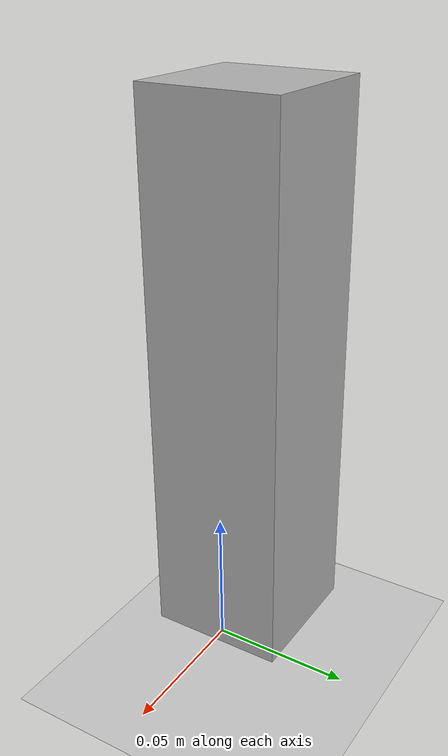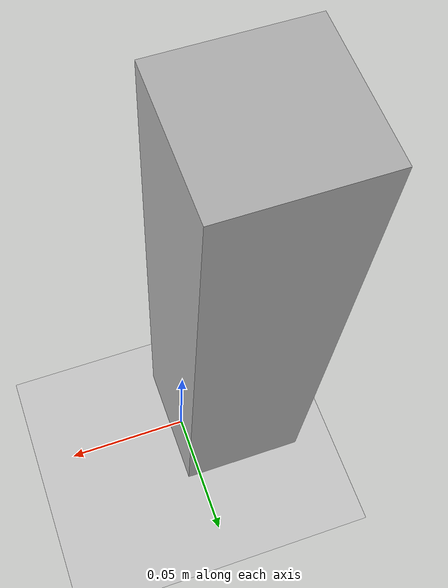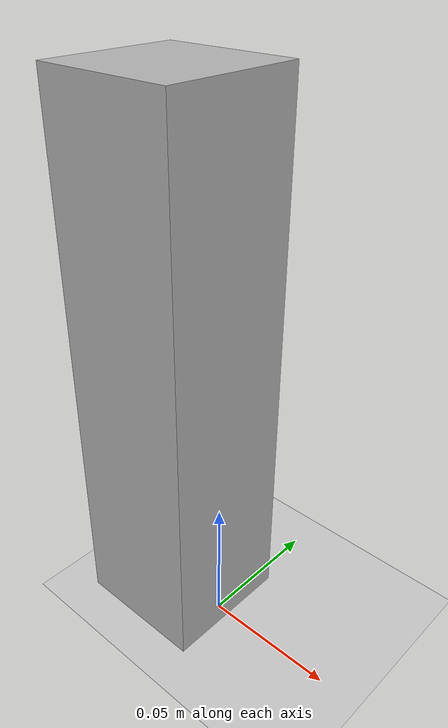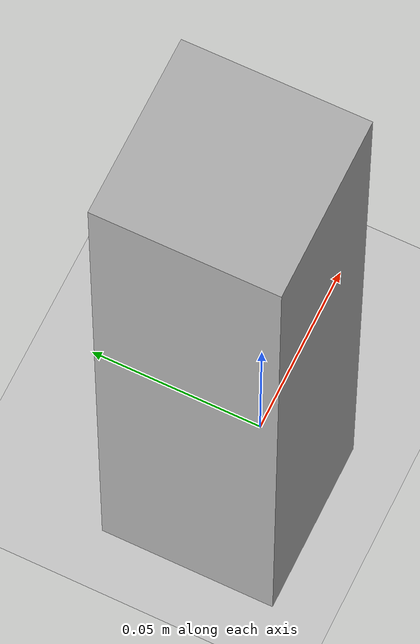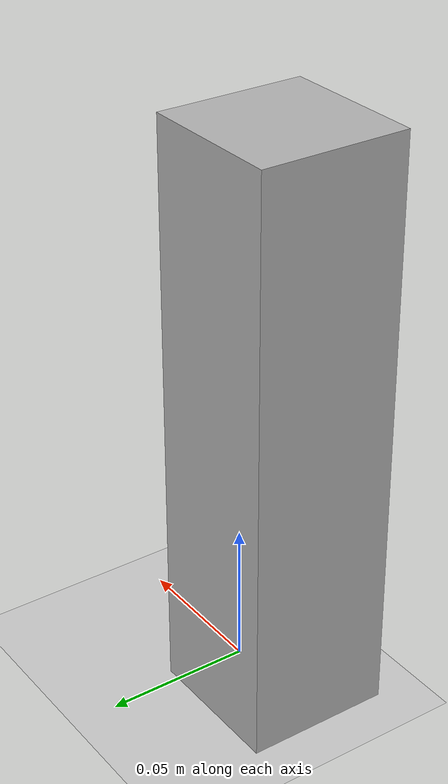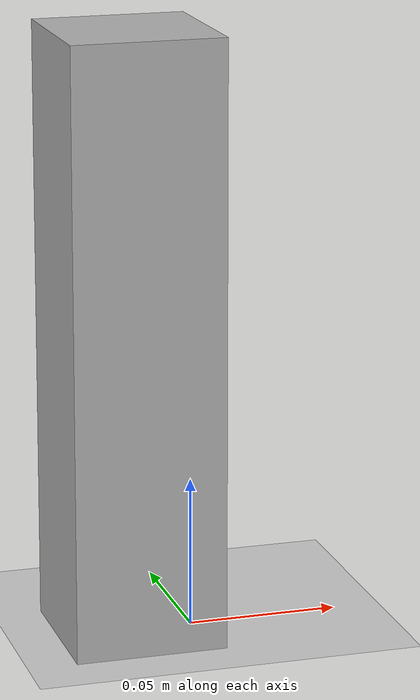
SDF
<sdf version='1.9'>
<world name='empty_world'>
    <!-- Physics Engine Settings -->
    <physics name='1ms' type='ignored'>
        <max_step_size>0.001</max_step_size>
        <real_time_factor>1</real_time_factor>
        <real_time_update_rate>1000</real_time_update_rate>
    </physics>
    <gravity>0 0 -9.8</gravity>
    <magnetic_field>6e-06 2.3e-05 -4.2e-05</magnetic_field>

    <!-- Necessary Plugins -->
    <plugin name='ignition::gazebo::systems::Physics' filename='libignition-gazebo-physics-system.so'/>
    <plugin name='ignition::gazebo::systems::UserCommands' filename='libignition-gazebo-user-commands-system.so'/>
    <plugin name='ignition::gazebo::systems::SceneBroadcaster' filename='libignition-gazebo-scene-broadcaster-system.so'/>

    <!-- Sun Light -->
    <light type="directional" name="sun">
        <cast_shadows>true</cast_shadows>
        <pose>0 0 10 0 0 0</pose>
        <diffuse>0.8 0.8 0.8 1</diffuse>
        <specular>0.2 0.2 0.2 1</specular>
        <attenuation>
            <range>1000</range>
            <constant>0.9</constant>
            <linear>0.01</linear>
            <quadratic>0.001</quadratic>
        </attenuation>
        <direction>-0.5 0.1 -0.9</direction>
    </light>

    <!-- Ground Plane -->
    <model name="ground_plane">
        <static>true</static>
        <link name="link">
            <collision name="collision">
            <geometry>
                <plane>
                <normal>0 0 1</normal>
                </plane>
            </geometry>
            </collision>
            <visual name="visual">
            <geometry>
                <plane>
                <normal>0 0 1</normal>
                <size>100 100</size>
                </plane>
            </geometry>
            <material>
                <ambient>0.8 0.8 0.8 1</ambient>
                <diffuse>0.8 0.8 0.8 1</diffuse>
                <specular>0.8 0.8 0.8 1</specular>
            </material>
            </visual>
        </link>
    </model>

    <!-- Test Bench -->
    <model name='test_bench'>
        <pose>-0.02 0 0.1 0 0 0</pose>
        <static>true</static>
        <link name='link'>
            <collision name='collision'>
            <geometry>
                <box>
                <size>0.05 0.05 0.2</size>
                </box>
            </geometry>
            </collision>
            <visual name='visual'>
            <geometry>
                <box>
                <size>0.05 0.05 0.2</size>
                </box>
            </geometry>
            <material>
                <ambient>0.3 0.3 0.3 1</ambient>
                <diffuse>0.7 0.7 0.7 1</diffuse>
                <specular>1 1 1 1</specular>
            </material>
            </visual>
        </link>
    </model>
</world>
</sdf>
